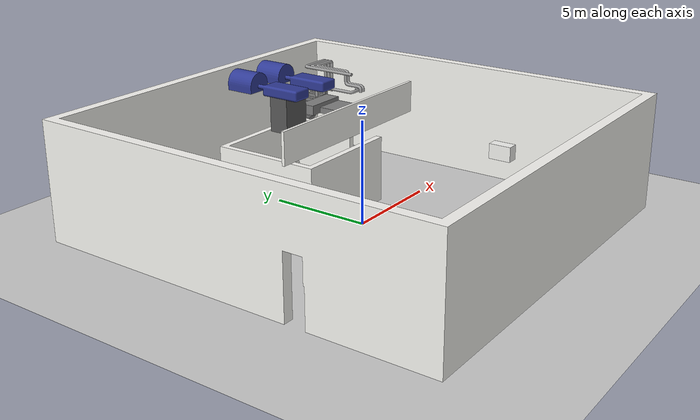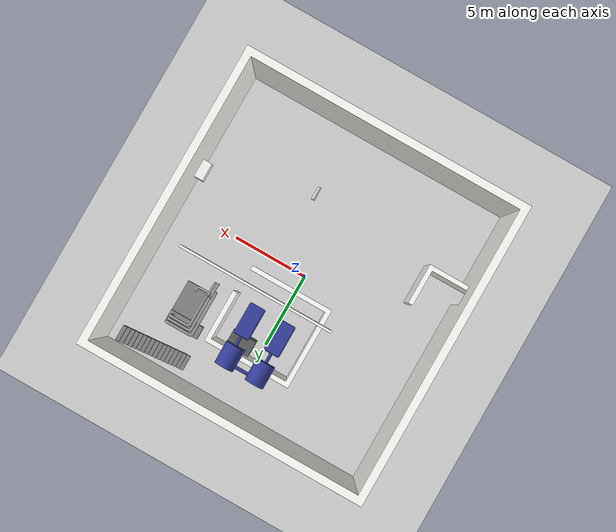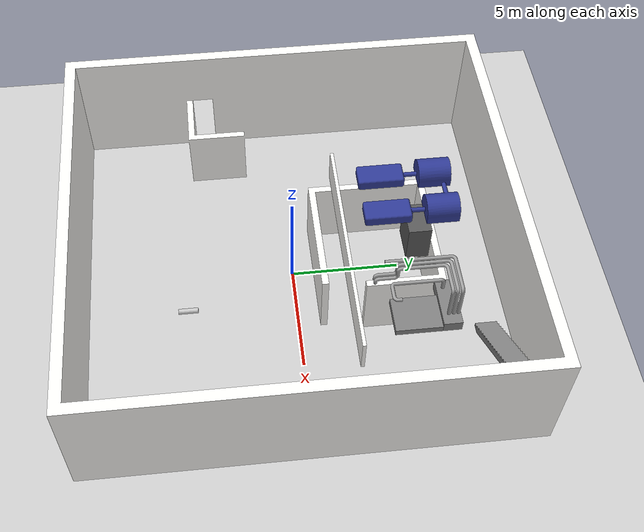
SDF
<sdf version="1.6">
 <world name="default">
  <include><uri>model://ground_plane</uri></include>
  <model name="MezzaninePipework_stainlessSteel_4">
   <static>true</static>
   <link name="link_">
    <collision name="collision_MezzaninePipework_stainlessSteel_4">
     <geometry>
      <mesh><uri>model://reactor_room/models/MezzaninePipework_stainlessSteel_4.dae</uri></mesh>
     </geometry>
    </collision>
    <visual name="visual_MezzaninePipework_stainlessSteel_4">
     <geometry>
      <mesh><uri>model://reactor_room/models/MezzaninePipework_stainlessSteel_4.dae</uri></mesh>
     </geometry>
    </visual>
   </link>
  </model>
  <model name="MezzaninePipework_stainlessSteel_2">
   <static>true</static>
   <link name="link_">
    <collision name="collision_MezzaninePipework_stainlessSteel_2">
     <geometry>
      <mesh><uri>model://reactor_room/models/MezzaninePipework_stainlessSteel_2.dae</uri></mesh>
     </geometry>
    </collision>
    <visual name="visual_MezzaninePipework_stainlessSteel_2">
     <geometry>
      <mesh><uri>model://reactor_room/models/MezzaninePipework_stainlessSteel_2.dae</uri></mesh>
     </geometry>
    </visual>
   </link>
  </model>
  <model name="MezzanineOverheadTanks_stainlessSteel">
   <static>true</static>
   <link name="link_">
    <collision name="collision_MezzanineOverheadTanks_stainlessSteel">
     <geometry>
      <mesh><uri>model://reactor_room/models/MezzanineOverheadTanks_stainlessSteel.dae</uri></mesh>
     </geometry>
    </collision>
    <visual name="visual_MezzanineOverheadTanks_stainlessSteel">
     <geometry>
      <mesh><uri>model://reactor_room/models/MezzanineOverheadTanks_stainlessSteel.dae</uri></mesh>
     </geometry>
    </visual>
   </link>
  </model>
  <model name="verticalPipeSetAccess_stainlessSteel">
   <static>true</static>
   <link name="link_">
    <collision name="collision_verticalPipeSetAccess_stainlessSteel">
     <geometry>
      <mesh><uri>model://reactor_room/models/verticalPipeSetAccess_stainlessSteel.dae</uri></mesh>
     </geometry>
    </collision>
    <visual name="visual_verticalPipeSetAccess_stainlessSteel">
     <geometry>
      <mesh><uri>model://reactor_room/models/verticalPipeSetAccess_stainlessSteel.dae</uri></mesh>
     </geometry>
    </visual>
   </link>
  </model>
  <model name="MezzanineTankSet3Plinth_concrete">
   <static>true</static>
   <link name="link_">
    <collision name="collision_MezzanineTankSet3Plinth_concrete">
     <geometry><mesh><uri>model://reactor_room/models/MezzanineTankSet3Plinth_concrete.dae</uri></mesh></geometry>
    </collision>
    <visual name="visual_MezzanineTankSet3Plinth_concrete">
     <geometry><mesh><uri>model://reactor_room/models/MezzanineTankSet3Plinth_concrete.dae</uri></mesh></geometry>
    </visual>
   </link>
  </model>
  <model name="Stairs_aluminium">
   <static>true</static>
   <link name="link_">
    <collision name="collision_Stairs_aluminium">
     <geometry><mesh><uri>model://reactor_room/models/Stairs_aluminium.dae</uri></mesh></geometry>
    </collision>
    <visual name="visual_Stairs_aluminium">
     <geometry><mesh><uri>model://reactor_room/models/Stairs_aluminium.dae</uri></mesh></geometry>
    </visual>
   </link>
  </model>
  <model name="TankShielding_boratedConcrete">
   <static>true</static>
   <link name="link_">
    <collision name="collision_TankShielding_boratedConcrete">
     <geometry><mesh><uri>model://reactor_room/models/TankShielding_boratedConcrete.dae</uri></mesh></geometry>
    </collision>
    <visual name="visual_TankShielding_boratedConcrete">
     <geometry><mesh><uri>model://reactor_room/models/TankShielding_boratedConcrete.dae</uri></mesh></geometry>
    </visual>
   </link>
  </model>
  <model name="tankSet1_pipework_stainlessSteel_2">
   <static>true</static>
   <link name="link_">
    <collision name="collision_tankSet1_pipework_stainlessSteel_2">
     <geometry>
      <mesh><uri>model://reactor_room/models/tankSet1_pipework_stainlessSteel_2.dae</uri></mesh>
     </geometry>
    </collision>
    <visual name="visual_tankSet1_pipework_stainlessSteel_2">
     <geometry>
      <mesh><uri>model://reactor_room/models/tankSet1_pipework_stainlessSteel_2.dae</uri></mesh>
     </geometry>
    </visual>
   </link>
  </model>
  <model name="MezzaninePipework_stainlessSteel_1">
   <static>true</static>
   <link name="link_">
    <collision name="collision_MezzaninePipework_stainlessSteel_1">
     <geometry>
      <mesh><uri>model://reactor_room/models/MezzaninePipework_stainlessSteel_1.dae</uri></mesh>
     </geometry>
    </collision>
    <visual name="visual_MezzaninePipework_stainlessSteel_1">
     <geometry>
      <mesh><uri>model://reactor_room/models/MezzaninePipework_stainlessSteel_1.dae</uri></mesh>
     </geometry>
    </visual>
   </link>
  </model>
  <model name="MezzaninePipework_stainlessSteel_3">
   <static>true</static>
   <link name="link_">
    <collision name="collision_MezzaninePipework_stainlessSteel_3">
     <geometry>
      <mesh><uri>model://reactor_room/models/MezzaninePipework_stainlessSteel_3.dae</uri></mesh>
     </geometry>
    </collision>
    <visual name="visual_MezzaninePipework_stainlessSteel_3">
     <geometry>
      <mesh><uri>model://reactor_room/models/MezzaninePipework_stainlessSteel_3.dae</uri></mesh>
     </geometry>
    </visual>
   </link>
  </model>
  <model name="MezzanineShielding_boratedConcrete_2">
   <static>true</static>
   <link name="link_">
    <collision name="collision_MezzanineShielding_boratedConcrete_2">
     <geometry>
      <mesh><uri>model://reactor_room/models/MezzanineShielding_boratedConcrete_2.dae</uri></mesh>
     </geometry>
    </collision>
    <visual name="visual_MezzanineShielding_boratedConcrete_2">
     <geometry>
      <mesh><uri>model://reactor_room/models/MezzanineShielding_boratedConcrete_2.dae</uri></mesh>
     </geometry>
    </visual>
   </link>
  </model>
  <model name="MezzanineControlSystem_aluminium_2">
   <static>true</static>
   <link name="link_">
    <collision name="collision_MezzanineControlSystem_aluminium_2">
     <geometry>
      <mesh><uri>model://reactor_room/models/MezzanineControlSystem_aluminium_2.dae</uri></mesh>
     </geometry>
    </collision>
    <visual name="visual_MezzanineControlSystem_aluminium_2">
     <geometry>
      <mesh><uri>model://reactor_room/models/MezzanineControlSystem_aluminium_2.dae</uri></mesh>
     </geometry>
    </visual>
   </link>
  </model>
  <model name="walls_boratedConcrete">
   <static>true</static>
   <link name="link_">
    <collision name="collision_walls_boratedConcrete">
     <geometry><mesh><uri>model://reactor_room/models/walls_boratedConcrete.dae</uri></mesh></geometry>
    </collision>
    <visual name="visual_walls_boratedConcrete">
     <geometry><mesh><uri>model://reactor_room/models/walls_boratedConcrete.dae</uri></mesh></geometry>
    </visual>
   </link>
  </model>
  <model name="MezzanineTankSet4Plinth_concrete">
   <static>true</static>
   <link name="link_">
    <collision name="collision_MezzanineTankSet4Plinth_concrete">
     <geometry><mesh><uri>model://reactor_room/models/MezzanineTankSet4Plinth_concrete.dae</uri></mesh></geometry>
    </collision>
    <visual name="visual_MezzanineTankSet4Plinth_concrete">
     <geometry><mesh><uri>model://reactor_room/models/MezzanineTankSet4Plinth_concrete.dae</uri></mesh></geometry>
    </visual>
   </link>
  </model>
 </world>
</sdf>
